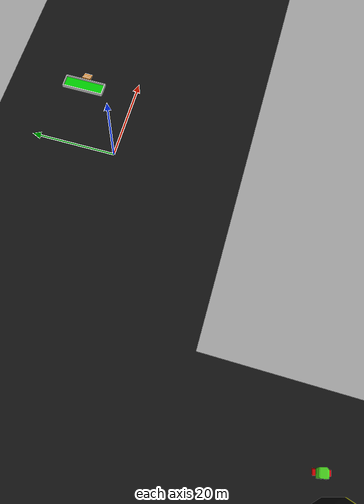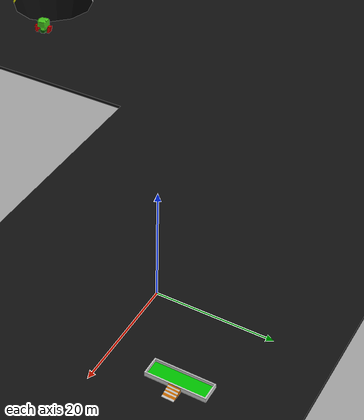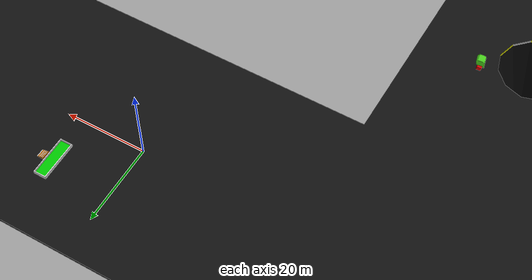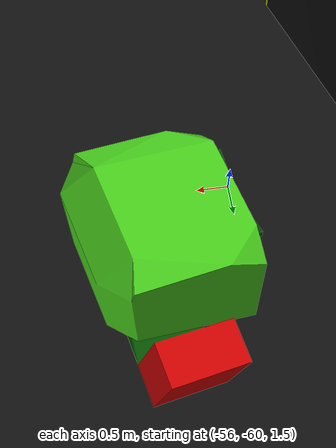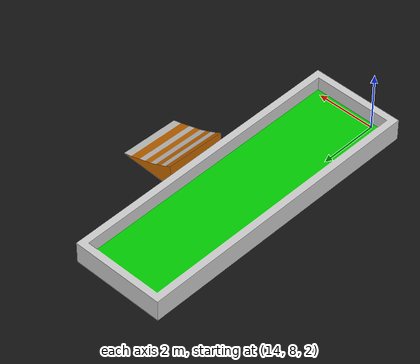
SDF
<sdf version="1.7">
 <world name="default">
  <light name="sun" type="directional">
   <pose>0 0 10 0 -0 0</pose>
   <diffuse>1 1 1 1</diffuse>
   <specular>0.2 0.2 0.2 1</specular>
   <attenuation>
    <range>1000</range>
    <constant>0.9</constant>
    <linear>0.01</linear>
    <quadratic>0.001</quadratic>
   </attenuation>
   <direction>-0.5 0.1 -0.9</direction>
   <spot><inner_angle>0</inner_angle><outer_angle>0</outer_angle><falloff>0</falloff></spot>
  </light>
  <gravity>0 0 -9.8</gravity>
  <magnetic_field>6e-06 2.3e-05 -4.2e-05</magnetic_field>
  <atmosphere type="adiabatic"/>
  <physics type="ode">
   <max_step_size>0.001</max_step_size>
   <real_time_factor>1</real_time_factor>
   <real_time_update_rate>1000</real_time_update_rate>
  </physics>
  <scene><ambient>0.4 0.4 0.4 1</ambient><background>0.7 0.7 0.7 1</background><shadows>1</shadows></scene>
  <audio><device>default</device></audio>
  <spherical_coordinates>
   <surface_model>EARTH_WGS84</surface_model>
   <latitude_deg>0</latitude_deg>
   <longitude_deg>0</longitude_deg>
   <elevation>0</elevation>
   <heading_deg>0</heading_deg>
  </spherical_coordinates>
  <model name="carpark">
   <static>1</static>
   <link name="carpark_link">
    <visual name="carpark_visual">
     <cast_shadows>0</cast_shadows>
     <geometry><mesh><uri>model://carpark/meshes/carpark.dae</uri></mesh></geometry>
    </visual>
    <collision name="carpark_collision_ground">
     <geometry><mesh><uri>model://carpark/meshes/carpark_floor.dae</uri></mesh></geometry>
    </collision>
    <collision name="carpark_collision_sidewalk">
     <geometry><mesh><uri>model://carpark/meshes/carpark_sidewalk.dae</uri></mesh></geometry>
    </collision>
    <collision name="carpark_collision_objects">
     <geometry><mesh><uri>model://carpark/meshes/carpark_objects.dae</uri></mesh></geometry>
    </collision>
   </link>
  </model>
  <model name="acidpool">
   <pose>15.0797 12.3432 1.45 0 -0 0</pose>
   <static>1</static>
   <link name="body">
    <inertial>
     <mass>1</mass>
     <inertia>
      <ixx>0.166667</ixx>
      <ixy>0</ixy>
      <ixz>0</ixz>
      <iyy>0.166667</iyy>
      <iyz>0</iyz>
      <izz>0.166667</izz>
     </inertia>
    </inertial>
    <collision name="collision">
     <geometry><mesh><uri>model://acidpool/meshes/acid_pool.dae</uri></mesh></geometry>
    </collision>
    <visual name="visual">
     <geometry><mesh><uri>model://acidpool/meshes/acid_pool.dae</uri></mesh></geometry>
    </visual>
    <cast_shadows>0</cast_shadows>
   </link>
  </model>
  <model name="ramp">
   <pose>17.8223 12.402 1.45 0 0 -0.031531</pose>
   <static>1</static>
   <link name="body">
    <inertial>
     <mass>1</mass>
     <inertia>
      <ixx>0.166667</ixx>
      <ixy>0</ixy>
      <ixz>0</ixz>
      <iyy>0.166667</iyy>
      <iyz>0</iyz>
      <izz>0.166667</izz>
     </inertia>
    </inertial>
    <collision name="collision">
     <geometry><mesh><uri>model://ramp/meshes/ramp.dae</uri></mesh></geometry>
    </collision>
    <visual name="visual"><geometry><mesh><uri>model://ramp/meshes/ramp.dae</uri></mesh></geometry></visual>
    <cast_shadows>0</cast_shadows>
   </link>
  </model>
  <model name="jokerbot">
   <static>0</static>
   <link name="jokerbot_link">
    <visual name="jokerbot_visual">
     <geometry><mesh><uri>model://jokerbot/meshes/jokerbot.dae</uri><scale>1 1 1</scale></mesh></geometry>
    </visual>
    <collision name="jokerbot_collision">
     <geometry><mesh><uri>model://jokerbot/meshes/jokerbot.dae</uri><scale>1 1 1</scale></mesh></geometry>
    </collision>
    <inertial>
     <inertia><ixx>1</ixx><ixy>0</ixy><ixz>0</ixz><iyy>1</iyy><iyz>0</iyz><izz>1</izz></inertia>
     <mass>1</mass>
    </inertial>
   </link>
   <pose>-54.6901 -58.302 1.37569 -0.00342 -0.02525 -2.91189</pose>
  </model>
 </world>
</sdf>
